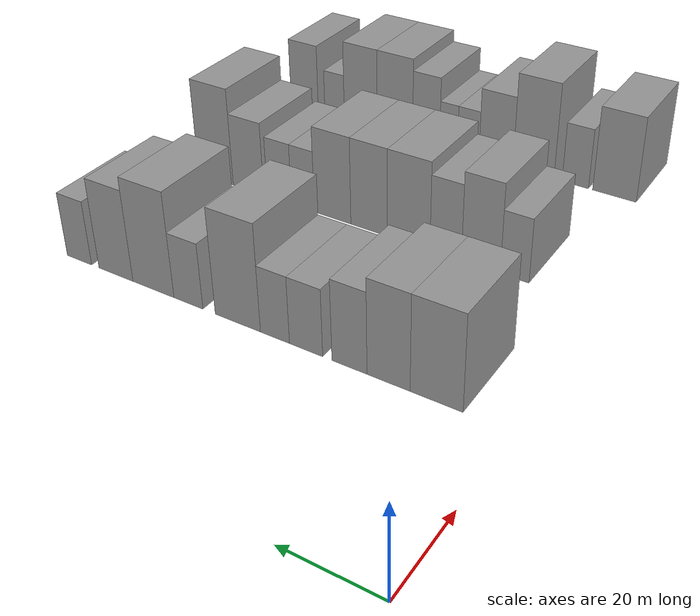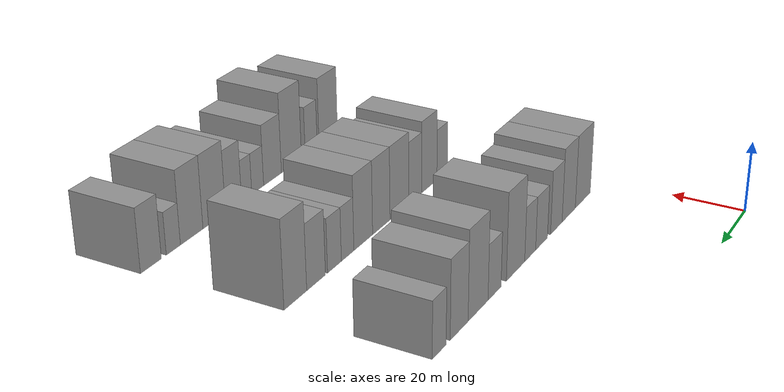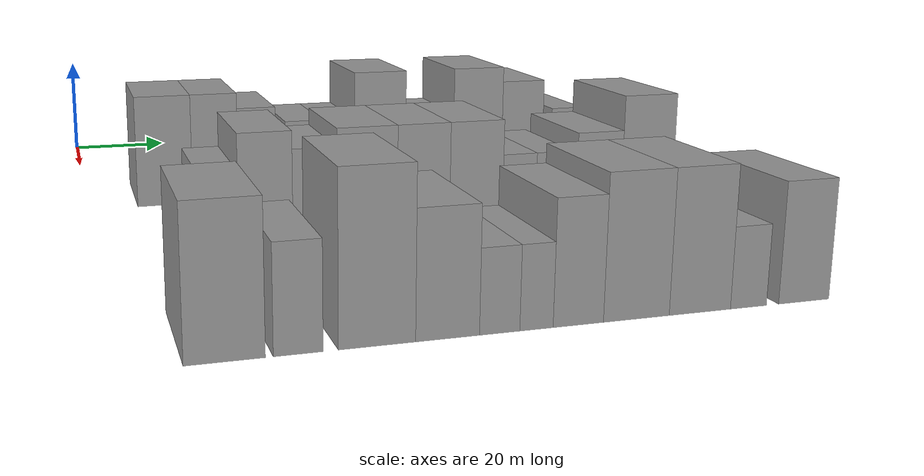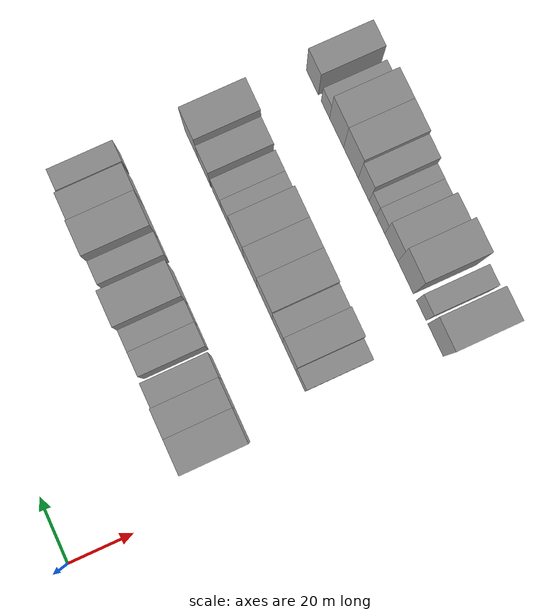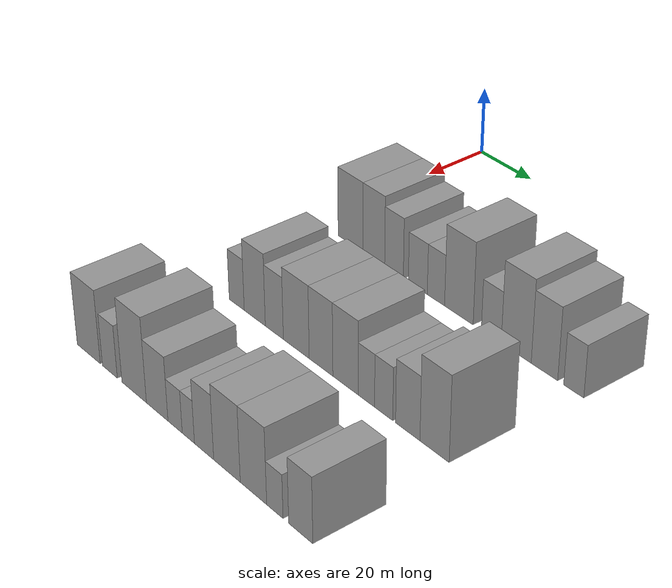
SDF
<sdf version="1.6">
 <world name="default">
  <model name="building_43">
   <static>1</static>
   <pose>50.0000 14.5789 0 0.000000 0.000000 0.000000</pose>
   <link name="link">
    <pose>0 0 10.50 0 0 0</pose>
    <collision name="collision"><geometry><box><size>20.0000 10.4227 21.0000</size></box></geometry></collision>
    <visual name="visual">
     <cast_shadows>0</cast_shadows>
     <geometry><box><size>20.0000 10.4227 21.0000</size></box></geometry>
     <material>
      <script>
       <uri>model://grey_wall/materials/scripts</uri>
       <uri>model://grey_wall/materials/textures</uri>
       <name>vrc/grey_wall</name>
      </script>
     </material>
    </visual>
   </link>
  </model>
  <model name="building_44">
   <static>1</static>
   <pose>50.0000 24.2047 0 0.000000 0.000000 0.000000</pose>
   <link name="link">
    <pose>0 0 10.50 0 0 0</pose>
    <collision name="collision"><geometry><box><size>20.0000 8.8288 21.0000</size></box></geometry></collision>
    <visual name="visual">
     <cast_shadows>0</cast_shadows>
     <geometry><box><size>20.0000 8.8288 21.0000</size></box></geometry>
     <material>
      <script>
       <uri>model://grey_wall/materials/scripts</uri>
       <uri>model://grey_wall/materials/textures</uri>
       <name>vrc/grey_wall</name>
      </script>
     </material>
    </visual>
   </link>
  </model>
  <model name="building_45">
   <static>1</static>
   <pose>50.0000 32.3401 0 0.000000 0.000000 0.000000</pose>
   <link name="link">
    <pose>0 0 9.00 0 0 0</pose>
    <collision name="collision"><geometry><box><size>20.0000 7.4420 18.0000</size></box></geometry></collision>
    <visual name="visual">
     <cast_shadows>0</cast_shadows>
     <geometry><box><size>20.0000 7.4420 18.0000</size></box></geometry>
     <material>
      <script>
       <uri>model://grey_wall/materials/scripts</uri>
       <uri>model://grey_wall/materials/textures</uri>
       <name>vrc/grey_wall</name>
      </script>
     </material>
    </visual>
   </link>
  </model>
  <model name="building_46">
   <static>1</static>
   <pose>50.0000 41.7242 0 0.000000 0.000000 0.000000</pose>
   <link name="link">
    <pose>0 0 7.50 0 0 0</pose>
    <collision name="collision"><geometry><box><size>20.0000 7.3263 15.0000</size></box></geometry></collision>
    <visual name="visual">
     <cast_shadows>0</cast_shadows>
     <geometry><box><size>20.0000 7.3263 15.0000</size></box></geometry>
     <material>
      <script>
       <uri>model://grey_wall/materials/scripts</uri>
       <uri>model://grey_wall/materials/textures</uri>
       <name>vrc/grey_wall</name>
      </script>
     </material>
    </visual>
   </link>
  </model>
  <model name="building_47">
   <static>1</static>
   <pose>50.0000 48.6905 0 0.000000 0.000000 0.000000</pose>
   <link name="link">
    <pose>0 0 7.50 0 0 0</pose>
    <collision name="collision"><geometry><box><size>20.0000 6.6062 15.0000</size></box></geometry></collision>
    <visual name="visual">
     <cast_shadows>0</cast_shadows>
     <geometry><box><size>20.0000 6.6062 15.0000</size></box></geometry>
     <material>
      <script>
       <uri>model://grey_wall/materials/scripts</uri>
       <uri>model://grey_wall/materials/textures</uri>
       <name>vrc/grey_wall</name>
      </script>
     </material>
    </visual>
   </link>
  </model>
  <model name="building_48">
   <static>1</static>
   <pose>50.0000 57.3167 0 0.000000 0.000000 0.000000</pose>
   <link name="link">
    <pose>0 0 12.00 0 0 0</pose>
    <collision name="collision"><geometry><box><size>20.0000 10.6461 24.0000</size></box></geometry></collision>
    <visual name="visual">
     <cast_shadows>0</cast_shadows>
     <geometry><box><size>20.0000 10.6461 24.0000</size></box></geometry>
     <material>
      <script>
       <uri>model://grey_wall/materials/scripts</uri>
       <uri>model://grey_wall/materials/textures</uri>
       <name>vrc/grey_wall</name>
      </script>
     </material>
    </visual>
   </link>
  </model>
  <model name="building_49">
   <static>1</static>
   <pose>50.0000 69.2157 0 0.000000 0.000000 0.000000</pose>
   <link name="link">
    <pose>0 0 7.50 0 0 0</pose>
    <collision name="collision"><geometry><box><size>20.0000 7.1519 15.0000</size></box></geometry></collision>
    <visual name="visual">
     <cast_shadows>0</cast_shadows>
     <geometry><box><size>20.0000 7.1519 15.0000</size></box></geometry>
     <material>
      <script>
       <uri>model://grey_wall/materials/scripts</uri>
       <uri>model://grey_wall/materials/textures</uri>
       <name>vrc/grey_wall</name>
      </script>
     </material>
    </visual>
   </link>
  </model>
  <model name="building_50">
   <static>1</static>
   <pose>50.0000 78.0543 0 0.000000 0.000000 0.000000</pose>
   <link name="link">
    <pose>0 0 12.00 0 0 0</pose>
    <collision name="collision"><geometry><box><size>20.0000 10.5252 24.0000</size></box></geometry></collision>
    <visual name="visual">
     <cast_shadows>0</cast_shadows>
     <geometry><box><size>20.0000 10.5252 24.0000</size></box></geometry>
     <material>
      <script>
       <uri>model://grey_wall/materials/scripts</uri>
       <uri>model://grey_wall/materials/textures</uri>
       <name>vrc/grey_wall</name>
      </script>
     </material>
    </visual>
   </link>
  </model>
  <model name="building_51">
   <static>1</static>
   <pose>50.0000 87.8354 0 0.000000 0.000000 0.000000</pose>
   <link name="link">
    <pose>0 0 10.50 0 0 0</pose>
    <collision name="collision"><geometry><box><size>20.0000 9.0369 21.0000</size></box></geometry></collision>
    <visual name="visual">
     <cast_shadows>0</cast_shadows>
     <geometry><box><size>20.0000 9.0369 21.0000</size></box></geometry>
     <material>
      <script>
       <uri>model://grey_wall/materials/scripts</uri>
       <uri>model://grey_wall/materials/textures</uri>
       <name>vrc/grey_wall</name>
      </script>
     </material>
    </visual>
   </link>
  </model>
  <model name="building_52">
   <static>1</static>
   <pose>50.0000 97.6901 0 0.000000 0.000000 0.000000</pose>
   <link name="link">
    <pose>0 0 7.50 0 0 0</pose>
    <collision name="collision"><geometry><box><size>20.0000 6.6724 15.0000</size></box></geometry></collision>
    <visual name="visual">
     <cast_shadows>0</cast_shadows>
     <geometry><box><size>20.0000 6.6724 15.0000</size></box></geometry>
     <material>
      <script>
       <uri>model://grey_wall/materials/scripts</uri>
       <uri>model://grey_wall/materials/textures</uri>
       <name>vrc/grey_wall</name>
      </script>
     </material>
    </visual>
   </link>
  </model>
  <model name="building_131">
   <static>1</static>
   <pose>90.0000 18.8829 0 0.000000 0.000000 0.000000</pose>
   <link name="link">
    <pose>0 0 7.50 0 0 0</pose>
    <collision name="collision"><geometry><box><size>20.0000 6.3459 15.0000</size></box></geometry></collision>
    <visual name="visual">
     <cast_shadows>0</cast_shadows>
     <geometry><box><size>20.0000 6.3459 15.0000</size></box></geometry>
     <material>
      <script>
       <uri>model://grey_wall/materials/scripts</uri>
       <uri>model://grey_wall/materials/textures</uri>
       <name>vrc/grey_wall</name>
      </script>
     </material>
    </visual>
   </link>
  </model>
  <model name="building_132">
   <static>1</static>
   <pose>90.0000 26.4526 0 0.000000 0.000000 0.000000</pose>
   <link name="link">
    <pose>0 0 10.50 0 0 0</pose>
    <collision name="collision"><geometry><box><size>20.0000 8.7936 21.0000</size></box></geometry></collision>
    <visual name="visual">
     <cast_shadows>0</cast_shadows>
     <geometry><box><size>20.0000 8.7936 21.0000</size></box></geometry>
     <material>
      <script>
       <uri>model://grey_wall/materials/scripts</uri>
       <uri>model://grey_wall/materials/textures</uri>
       <name>vrc/grey_wall</name>
      </script>
     </material>
    </visual>
   </link>
  </model>
  <model name="building_133">
   <static>1</static>
   <pose>90.0000 34.5156 0 0.000000 0.000000 0.000000</pose>
   <link name="link">
    <pose>0 0 9.00 0 0 0</pose>
    <collision name="collision"><geometry><box><size>20.0000 7.3324 18.0000</size></box></geometry></collision>
    <visual name="visual">
     <cast_shadows>0</cast_shadows>
     <geometry><box><size>20.0000 7.3324 18.0000</size></box></geometry>
     <material>
      <script>
       <uri>model://grey_wall/materials/scripts</uri>
       <uri>model://grey_wall/materials/textures</uri>
       <name>vrc/grey_wall</name>
      </script>
     </material>
    </visual>
   </link>
  </model>
  <model name="building_134">
   <static>1</static>
   <pose>90.0000 43.3100 0 0.000000 0.000000 0.000000</pose>
   <link name="link">
    <pose>0 0 10.50 0 0 0</pose>
    <collision name="collision"><geometry><box><size>20.0000 10.2565 21.0000</size></box></geometry></collision>
    <visual name="visual">
     <cast_shadows>0</cast_shadows>
     <geometry><box><size>20.0000 10.2565 21.0000</size></box></geometry>
     <material>
      <script>
       <uri>model://grey_wall/materials/scripts</uri>
       <uri>model://grey_wall/materials/textures</uri>
       <name>vrc/grey_wall</name>
      </script>
     </material>
    </visual>
   </link>
  </model>
  <model name="building_135">
   <static>1</static>
   <pose>90.0000 52.9964 0 0.000000 0.000000 0.000000</pose>
   <link name="link">
    <pose>0 0 10.50 0 0 0</pose>
    <collision name="collision"><geometry><box><size>20.0000 9.1164 21.0000</size></box></geometry></collision>
    <visual name="visual">
     <cast_shadows>0</cast_shadows>
     <geometry><box><size>20.0000 9.1164 21.0000</size></box></geometry>
     <material>
      <script>
       <uri>model://grey_wall/materials/scripts</uri>
       <uri>model://grey_wall/materials/textures</uri>
       <name>vrc/grey_wall</name>
      </script>
     </material>
    </visual>
   </link>
  </model>
  <model name="building_136">
   <static>1</static>
   <pose>90.0000 62.2719 0 0.000000 0.000000 0.000000</pose>
   <link name="link">
    <pose>0 0 10.50 0 0 0</pose>
    <collision name="collision"><geometry><box><size>20.0000 9.4347 21.0000</size></box></geometry></collision>
    <visual name="visual">
     <cast_shadows>0</cast_shadows>
     <geometry><box><size>20.0000 9.4347 21.0000</size></box></geometry>
     <material>
      <script>
       <uri>model://grey_wall/materials/scripts</uri>
       <uri>model://grey_wall/materials/textures</uri>
       <name>vrc/grey_wall</name>
      </script>
     </material>
    </visual>
   </link>
  </model>
  <model name="building_137">
   <static>1</static>
   <pose>90.0000 70.0252 0 0.000000 0.000000 0.000000</pose>
   <link name="link">
    <pose>0 0 7.50 0 0 0</pose>
    <collision name="collision"><geometry><box><size>20.0000 6.0719 15.0000</size></box></geometry></collision>
    <visual name="visual">
     <cast_shadows>0</cast_shadows>
     <geometry><box><size>20.0000 6.0719 15.0000</size></box></geometry>
     <material>
      <script>
       <uri>model://grey_wall/materials/scripts</uri>
       <uri>model://grey_wall/materials/textures</uri>
       <name>vrc/grey_wall</name>
      </script>
     </material>
    </visual>
   </link>
  </model>
  <model name="building_138">
   <static>1</static>
   <pose>90.0000 76.3306 0 0.000000 0.000000 0.000000</pose>
   <link name="link">
    <pose>0 0 7.50 0 0 0</pose>
    <collision name="collision"><geometry><box><size>20.0000 6.5388 15.0000</size></box></geometry></collision>
    <visual name="visual">
     <cast_shadows>0</cast_shadows>
     <geometry><box><size>20.0000 6.5388 15.0000</size></box></geometry>
     <material>
      <script>
       <uri>model://grey_wall/materials/scripts</uri>
       <uri>model://grey_wall/materials/textures</uri>
       <name>vrc/grey_wall</name>
      </script>
     </material>
    </visual>
   </link>
  </model>
  <model name="building_139">
   <static>1</static>
   <pose>90.0000 84.8610 0 0.000000 0.000000 0.000000</pose>
   <link name="link">
    <pose>0 0 9.00 0 0 0</pose>
    <collision name="collision"><geometry><box><size>20.0000 8.5219 18.0000</size></box></geometry></collision>
    <visual name="visual">
     <cast_shadows>0</cast_shadows>
     <geometry><box><size>20.0000 8.5219 18.0000</size></box></geometry>
     <material>
      <script>
       <uri>model://grey_wall/materials/scripts</uri>
       <uri>model://grey_wall/materials/textures</uri>
       <name>vrc/grey_wall</name>
      </script>
     </material>
    </visual>
   </link>
  </model>
  <model name="building_140">
   <static>1</static>
   <pose>90.0000 94.0986 0 0.000000 0.000000 0.000000</pose>
   <link name="link">
    <pose>0 0 12.00 0 0 0</pose>
    <collision name="collision"><geometry><box><size>20.0000 9.9533 24.0000</size></box></geometry></collision>
    <visual name="visual">
     <cast_shadows>0</cast_shadows>
     <geometry><box><size>20.0000 9.9533 24.0000</size></box></geometry>
     <material>
      <script>
       <uri>model://grey_wall/materials/scripts</uri>
       <uri>model://grey_wall/materials/textures</uri>
       <name>vrc/grey_wall</name>
      </script>
     </material>
    </visual>
   </link>
  </model>
  <model name="building_209">
   <static>1</static>
   <pose>130.0000 13.5066 0 0.000000 0.000000 0.000000</pose>
   <link name="link">
    <pose>0 0 10.50 0 0 0</pose>
    <collision name="collision"><geometry><box><size>20.0000 10.2902 21.0000</size></box></geometry></collision>
    <visual name="visual">
     <cast_shadows>0</cast_shadows>
     <geometry><box><size>20.0000 10.2902 21.0000</size></box></geometry>
     <material>
      <script>
       <uri>model://grey_wall/materials/scripts</uri>
       <uri>model://grey_wall/materials/textures</uri>
       <name>vrc/grey_wall</name>
      </script>
     </material>
    </visual>
   </link>
  </model>
  <model name="building_210">
   <static>1</static>
   <pose>130.0000 22.8735 0 0.000000 0.000000 0.000000</pose>
   <link name="link">
    <pose>0 0 7.50 0 0 0</pose>
    <collision name="collision"><geometry><box><size>20.0000 6.4435 15.0000</size></box></geometry></collision>
    <visual name="visual">
     <cast_shadows>0</cast_shadows>
     <geometry><box><size>20.0000 6.4435 15.0000</size></box></geometry>
     <material>
      <script>
       <uri>model://grey_wall/materials/scripts</uri>
       <uri>model://grey_wall/materials/textures</uri>
       <name>vrc/grey_wall</name>
      </script>
     </material>
    </visual>
   </link>
  </model>
  <model name="building_211">
   <static>1</static>
   <pose>130.0000 33.2813 0 0.000000 0.000000 0.000000</pose>
   <link name="link">
    <pose>0 0 12.00 0 0 0</pose>
    <collision name="collision"><geometry><box><size>20.0000 10.3722 24.0000</size></box></geometry></collision>
    <visual name="visual">
     <cast_shadows>0</cast_shadows>
     <geometry><box><size>20.0000 10.3722 24.0000</size></box></geometry>
     <material>
      <script>
       <uri>model://grey_wall/materials/scripts</uri>
       <uri>model://grey_wall/materials/textures</uri>
       <name>vrc/grey_wall</name>
      </script>
     </material>
    </visual>
   </link>
  </model>
  <model name="building_212">
   <static>1</static>
   <pose>130.0000 42.9001 0 0.000000 0.000000 0.000000</pose>
   <link name="link">
    <pose>0 0 9.00 0 0 0</pose>
    <collision name="collision"><geometry><box><size>20.0000 8.8654 18.0000</size></box></geometry></collision>
    <visual name="visual">
     <cast_shadows>0</cast_shadows>
     <geometry><box><size>20.0000 8.8654 18.0000</size></box></geometry>
     <material>
      <script>
       <uri>model://grey_wall/materials/scripts</uri>
       <uri>model://grey_wall/materials/textures</uri>
       <name>vrc/grey_wall</name>
      </script>
     </material>
    </visual>
   </link>
  </model>
  <model name="building_213">
   <static>1</static>
   <pose>130.0000 50.2043 0 0.000000 0.000000 0.000000</pose>
   <link name="link">
    <pose>0 0 6.00 0 0 0</pose>
    <collision name="collision"><geometry><box><size>20.0000 5.7430 12.0000</size></box></geometry></collision>
    <visual name="visual">
     <cast_shadows>0</cast_shadows>
     <geometry><box><size>20.0000 5.7430 12.0000</size></box></geometry>
     <material>
      <script>
       <uri>model://grey_wall/materials/scripts</uri>
       <uri>model://grey_wall/materials/textures</uri>
       <name>vrc/grey_wall</name>
      </script>
     </material>
    </visual>
   </link>
  </model>
  <model name="building_214">
   <static>1</static>
   <pose>130.0000 55.4921 0 0.000000 0.000000 0.000000</pose>
   <link name="link">
    <pose>0 0 6.00 0 0 0</pose>
    <collision name="collision"><geometry><box><size>20.0000 4.8326 12.0000</size></box></geometry></collision>
    <visual name="visual">
     <cast_shadows>0</cast_shadows>
     <geometry><box><size>20.0000 4.8326 12.0000</size></box></geometry>
     <material>
      <script>
       <uri>model://grey_wall/materials/scripts</uri>
       <uri>model://grey_wall/materials/textures</uri>
       <name>vrc/grey_wall</name>
      </script>
     </material>
    </visual>
   </link>
  </model>
  <model name="building_215">
   <static>1</static>
   <pose>130.0000 61.6399 0 0.000000 0.000000 0.000000</pose>
   <link name="link">
    <pose>0 0 9.00 0 0 0</pose>
    <collision name="collision"><geometry><box><size>20.0000 7.4628 18.0000</size></box></geometry></collision>
    <visual name="visual">
     <cast_shadows>0</cast_shadows>
     <geometry><box><size>20.0000 7.4628 18.0000</size></box></geometry>
     <material>
      <script>
       <uri>model://grey_wall/materials/scripts</uri>
       <uri>model://grey_wall/materials/textures</uri>
       <name>vrc/grey_wall</name>
      </script>
     </material>
    </visual>
   </link>
  </model>
  <model name="building_216">
   <static>1</static>
   <pose>130.0000 70.3916 0 0.000000 0.000000 0.000000</pose>
   <link name="link">
    <pose>0 0 10.50 0 0 0</pose>
    <collision name="collision"><geometry><box><size>20.0000 10.0407 21.0000</size></box></geometry></collision>
    <visual name="visual">
     <cast_shadows>0</cast_shadows>
     <geometry><box><size>20.0000 10.0407 21.0000</size></box></geometry>
     <material>
      <script>
       <uri>model://grey_wall/materials/scripts</uri>
       <uri>model://grey_wall/materials/textures</uri>
       <name>vrc/grey_wall</name>
      </script>
     </material>
    </visual>
   </link>
  </model>
  <model name="building_217">
   <static>1</static>
   <pose>130.0000 80.2385 0 0.000000 0.000000 0.000000</pose>
   <link name="link">
    <pose>0 0 10.50 0 0 0</pose>
    <collision name="collision"><geometry><box><size>20.0000 9.6532 21.0000</size></box></geometry></collision>
    <visual name="visual">
     <cast_shadows>0</cast_shadows>
     <geometry><box><size>20.0000 9.6532 21.0000</size></box></geometry>
     <material>
      <script>
       <uri>model://grey_wall/materials/scripts</uri>
       <uri>model://grey_wall/materials/textures</uri>
       <name>vrc/grey_wall</name>
      </script>
     </material>
    </visual>
   </link>
  </model>
  <model name="building_218">
   <static>1</static>
   <pose>130.0000 87.9777 0 0.000000 0.000000 0.000000</pose>
   <link name="link">
    <pose>0 0 6.00 0 0 0</pose>
    <collision name="collision"><geometry><box><size>20.0000 5.8251 12.0000</size></box></geometry></collision>
    <visual name="visual">
     <cast_shadows>0</cast_shadows>
     <geometry><box><size>20.0000 5.8251 12.0000</size></box></geometry>
     <material>
      <script>
       <uri>model://grey_wall/materials/scripts</uri>
       <uri>model://grey_wall/materials/textures</uri>
       <name>vrc/grey_wall</name>
      </script>
     </material>
    </visual>
   </link>
  </model>
  <model name="building_219">
   <static>1</static>
   <pose>130.0000 97.0583 0 0.000000 0.000000 0.000000</pose>
   <link name="link">
    <pose>0 0 9.00 0 0 0</pose>
    <collision name="collision"><geometry><box><size>20.0000 8.3361 18.0000</size></box></geometry></collision>
    <visual name="visual">
     <cast_shadows>0</cast_shadows>
     <geometry><box><size>20.0000 8.3361 18.0000</size></box></geometry>
     <material>
      <script>
       <uri>model://grey_wall/materials/scripts</uri>
       <uri>model://grey_wall/materials/textures</uri>
       <name>vrc/grey_wall</name>
      </script>
     </material>
    </visual>
   </link>
  </model>
 </world>
</sdf>
